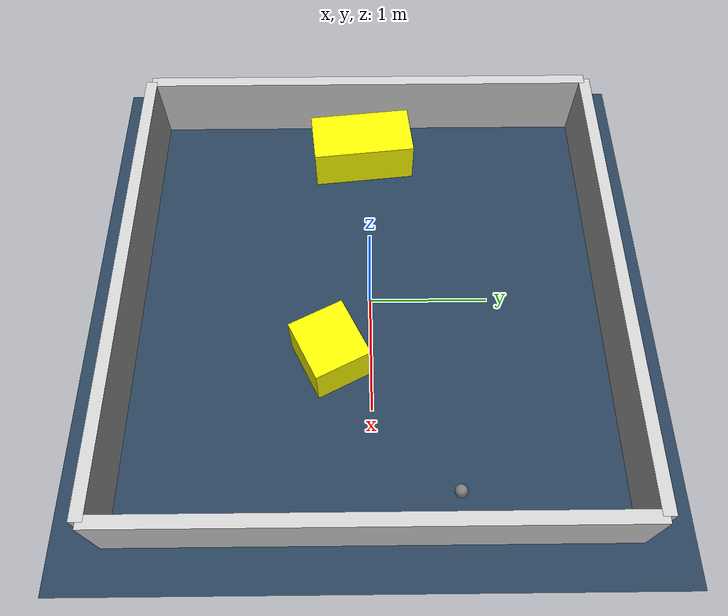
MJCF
<?xml version="1.0" ?>
<mujoco model="generated_environment">
  <option timestep="0.01" integrator="RK4" cone="elliptic"/>
  <default>
    <geom density="1"/>
  </default>
  <asset>
    <texture builtin="gradient" height="3072" rgb1="0.3 0.5 0.7" rgb2="0 0 0" type="skybox" width="512"/>
    <texture builtin="checker" height="300" mark="edge" markrgb="0.8 0.8 0.8" name="groundplane" rgb1="0.2 0.3 0.4" rgb2="0.1 0.2 0.3" type="2d" width="300"/>
    <material name="groundplane" reflectance="0.2" texrepeat="5 5" texture="groundplane" texuniform="true"/>
    <material name="robot" rgba="0.0 1.0 0.0 1"/>
  </asset>
  <worldbody>
    <light dir="0 0 -1" directional="true" pos="0 0 1.5"/>
    <geom condim="4" friction="1.0 0.005 0.001" material="groundplane" name="floor" size="0 0 0.05" type="plane"/>
    <body name="walls">
      <geom name="wall_1" condim="4" pos="-2.0 0.0 0.3" rgba="0.800000011920929 0.800000011920929 0.800000011920929 1.0" size="0.05 2.0 0.3" type="box"/>
      <geom name="wall_2" condim="4" pos="2.0 0.0 0.3" rgba="0.800000011920929 0.800000011920929 0.800000011920929 1.0" size="0.05 2.0 0.3" type="box"/>
      <geom name="wall_3" condim="4" pos="0.0 -2.0 0.3" rgba="0.800000011920929 0.800000011920929 0.800000011920929 1.0" size="2.0 0.05 0.3" type="box"/>
      <geom name="wall_4" condim="4" pos="0.0 2.0 0.3" rgba="0.800000011920929 0.800000011920929 0.800000011920929 1.0" size="2.0 0.05 0.3" type="box"/>
    </body>
    <body name="robot">
      <joint name="joint_x" type="slide" pos="0 0 0" axis="1 0 0"/>
      <joint name="joint_y" type="slide" pos="0 0 0" axis="0 1 0"/>
      <geom name="robot" type="sphere" pos="1.7076215503347942 0.6538018789676014 0.2" size="0.05" mass="5." friction="1.0 0.005 0.0001" condim="4"/>
      <site name="sensor_ball"/>
    </body>
    <body name="obstacle_1_movable">
      <geom name="obstacle_1_movable" condim="4" pos="-1.5397912678212233 -0.0625309654568893 0.2" euler="0 0 275.9171186663662" friction="1.0 0.005 0.001" rgba="1 1 0 1" size="0.4496769889952936 0.23571163951743626 0.2" type="box" mass="0.1"/>
      <joint type="free"/>
    </body>
    <body name="obstacle_2_movable">
      <geom name="obstacle_2_movable" condim="4" pos="0.5527267690461577 -0.328735355497205 0.2" euler="0 0 296.86522688886345" friction="1.0 0.005 0.001" rgba="1 1 0 1" size="0.23854820559674017 0.2612024615722479 0.2" type="box" mass="0.1"/>
      <joint type="free"/>
    </body>
  </worldbody>
  <actuator>
    <motor name="actuator_x" joint="joint_x" gear="1" ctrlrange="-1 1"/>
    <motor name="actuator_y" joint="joint_y" gear="1" ctrlrange="-1 1"/>
  </actuator>
</mujoco>
